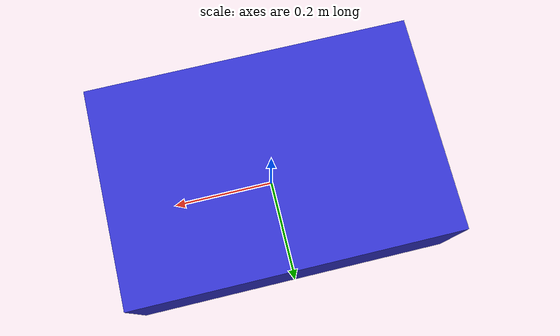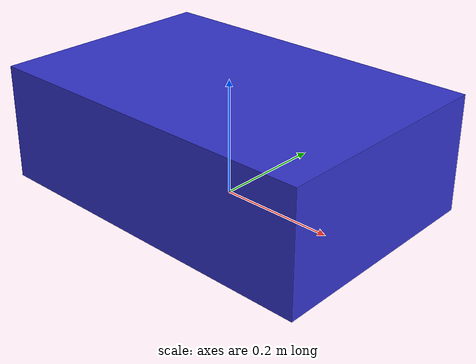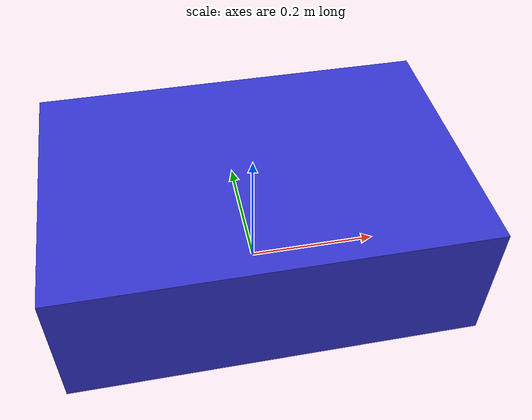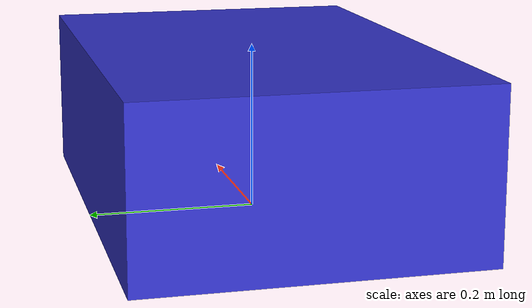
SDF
<?xml version="1.0" ?>
<sdf version="1.9">
  <model name="lidar_platform">
    <static>false</static>
    <pose>0 0 0.1 0 0 0</pose>

    <link name="base_link">
      <inertial>
        <mass>5.0</mass>
        <inertia>
          <ixx>0.1</ixx>
          <iyy>0.1</iyy>
          <izz>0.1</izz>
          <ixy>0</ixy>
          <ixz>0</ixz>
          <iyz>0</iyz>
        </inertia>
      </inertial>

      <collision name="base_collision">
        <geometry>
          <box>
            <size>0.6 0.4 0.2</size>
          </box>
        </geometry>
      </collision>

      <visual name="base_visual">
        <geometry>
          <box>
            <size>0.6 0.4 0.2</size>
          </box>
        </geometry>
        <material>
          <ambient>0.2 0.2 0.8 1</ambient>
          <diffuse>0.2 0.2 0.8 1</diffuse>
        </material>
      </visual>

      <sensor name="lidar" type="gpu_lidar">
        <pose>0 0 0.15 0 0 0</pose>
        <topic>lidar/scan</topic>
        <update_rate>10</update_rate>
        <lidar>
          <scan>
            <horizontal>
              <samples>360</samples>
              <resolution>1</resolution>
              <min_angle>-3.14159</min_angle>
              <max_angle>3.14159</max_angle>
            </horizontal>
          </scan>
          <range>
            <min>0.1</min>
            <max>30.0</max>
            <resolution>0.01</resolution>
          </range>
        </lidar>
        <always_on>1</always_on>
        <visualize>true</visualize>
      </sensor>
    </link>
  </model>
</sdf>
